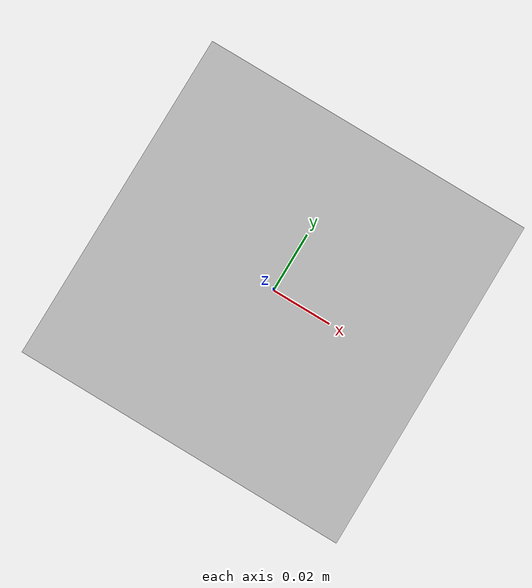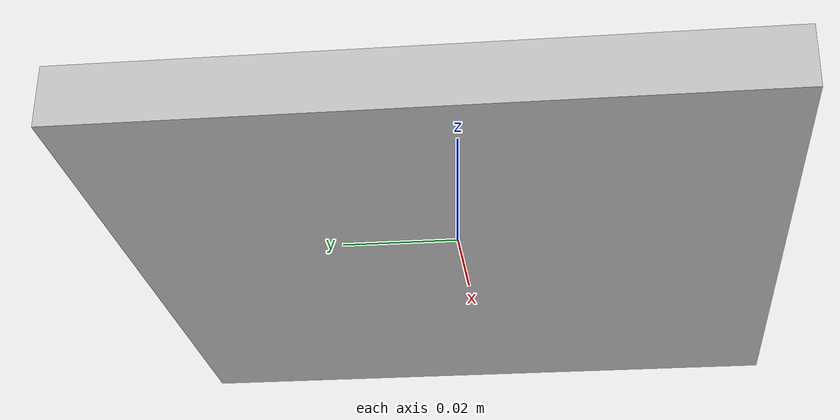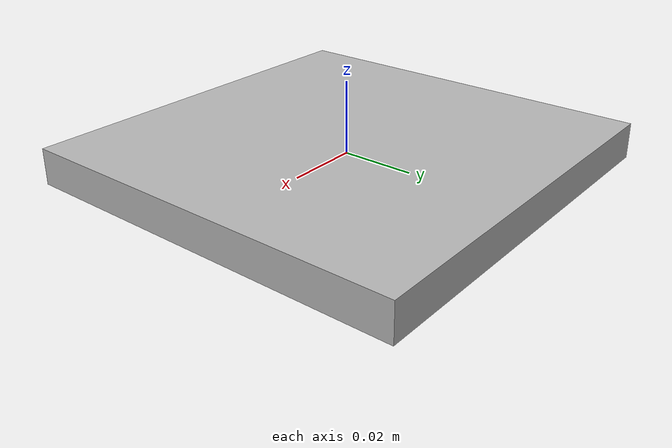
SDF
<?xml version="1.0" ?>
<sdf version="1.5">
  <model name="gas_marker_2">
    <static>true</static>
    <link name="link">
      <pose>0 0 0 0 0 0</pose>
      <collision name="collision">
        <geometry>
          <box>
            <size>0.11 0.11 0.01</size>
          </box>
        </geometry>
      </collision>
      <visual name="visual">
        <cast_shadows>false</cast_shadows>
        <geometry>
          <box>
            <size>0.11 0.11 0.01</size>
          </box>
        </geometry>
        <material>
          <script>
            <uri>model://gas_marker_2/materials/scripts</uri>
            <uri>model://gas_marker_2/materials/textures</uri>
            <name>vrc/gas_marker_2</name>
          </script>
        </material>
      </visual>
    </link>
  </model>
</sdf>
